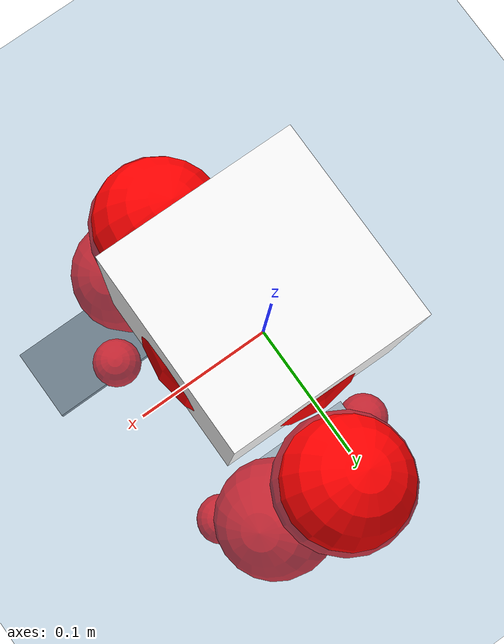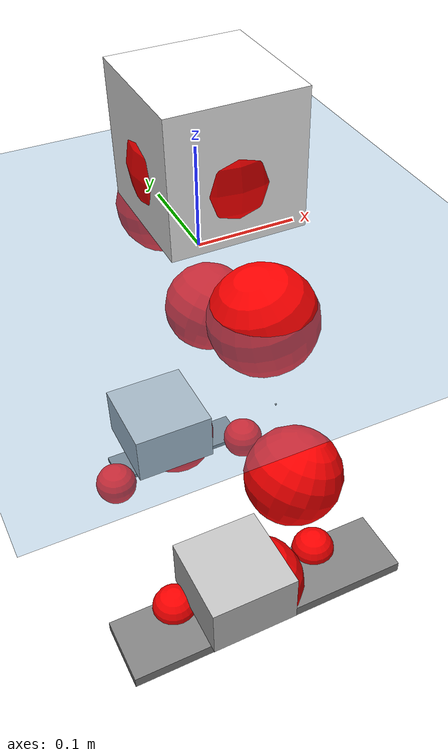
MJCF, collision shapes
<mujoco model="pi_12dof_release_v1">
  <compiler angle="radian" assetdir="assets" balanceinertia="true" inertiafromgeom="false"/>

  <option timestep="0.005" density="1.2" viscosity="2e-05"/>

  <size nkey="1"/>

  <visual>
    <quality shadowsize="8192"/>
    <map shadowclip="0.5"/>
  </visual>

  <default>
    <default class="/">
      <joint armature="0.01" damping="0.01" frictionloss="0.01"/>
      <geom contype="0" conaffinity="0" group="1" solref="-1000 -80"/>
      <site size="0.01 0.005 0.005" group="5"/>
      <general forcelimited="true" biastype="affine" gainprm="20" biasprm="0 -20 -0.5"/>
      <default class="foot">
        <geom size="0.0845 0.036 0.005" type="box" condim="6" group="4" priority="1" friction="0.9 0.2 0.2" solimp="0.015 1 0.005"/>
      </default>
      <default class="reward_collision_sphere">
        <geom group="5" rgba="1 0 0 1"/>
      </default>
    </default>
  </default>

  <asset>
    <texture type="skybox" colorspace="auto" name="//unnamed_texture_0" builtin="gradient" rgb1="0.95 0.95 0.95" rgb2="0.95 0.95 0.95" width="100" height="600"/>
    <texture type="2d" colorspace="auto" name="texplane" builtin="checker" rgb1="0.345 0.575 0.748" rgb2="0.345 0.575 0.748" markrgb="1 1 1" width="512" height="512"/>
    <material name="MatPlane" class="/" texture="texplane" texuniform="true" texrepeat="2 2" specular="0.9"/>
    <mesh name="baselink_1" class="/" file="baselink_1.STL"/>
    <mesh name="r_hip_pitch_link" class="/" file="r_hip_pitch_link.STL"/>
    <mesh name="r_hip_roll_link" class="/" file="r_hip_roll_link.STL"/>
    <mesh name="r_thigh_link" class="/" file="r_thigh_link.STL"/>
    <mesh name="r_calf_link" class="/" file="r_calf_link.STL"/>
    <mesh name="r_ankle_pitch_link" class="/" file="r_ankle_pitch_link.STL"/>
    <mesh name="r_ankle_roll_link" class="/" file="r_ankle_roll_link.STL"/>
    <mesh name="l_hip_pitch_link" class="/" file="l_hip_pitch_link.STL"/>
    <mesh name="l_hip_roll_link" class="/" file="l_hip_roll_link.STL"/>
    <mesh name="l_thigh_link" class="/" file="l_thigh_link.STL"/>
    <mesh name="l_calf_link" class="/" file="l_calf_link.STL"/>
    <mesh name="l_ankle_pitch_link" class="/" file="l_ankle_pitch_link.STL"/>
    <mesh name="l_ankle_roll_link" class="/" file="l_ankle_roll_link.STL"/>
  </asset>

  <worldbody>
    <geom name="floor" class="/" size="100 100 0.125" type="plane" group="0" material="MatPlane"/>
    <light name="toplight_shadow" class="/" pos="0 0 5" dir="0.0990148 0.0990148 -0.990148" type="directional" ambient="0.04 0.04 0.04" diffuse="0.55 0.55 0.55" specular="0.12 0.12 0.12"/>
    <light name="toplight_fill" class="/" pos="0 0 5" dir="0.0990148 0.0990148 -0.990148" type="directional" castshadow="false" ambient="0.04 0.04 0.04" diffuse="0.3 0.3 0.3" specular="0.08 0.08 0.08"/>
    <body name="trunk" pos="0.0103736 -0.00258757 0.00777722" quat="0.999989 -0.000648721 -0.00453814 -0.000920081">
      <inertial pos="0.0112 -0.00836487 0.0472681" quat="0.729403 -0.0218917 1.77396e-05 0.683733" mass="4.27248" diaginertia="0.0311766 0.0376186 0.0073315"/>
      <joint name="//unnamed_joint_0" type="free"/>
      <geom name="//unnamed_geom_1" class="/" type="mesh" density="0" rgba="1 1 1 1" mesh="baselink_1"/>
      <geom name="//unnamed_geom_2" class="/" size="0.0641442 0.0641442 0.0641442" pos="0 0 0.0947924" type="box" rgba="1 1 1 1"/>
      <geom name="//unnamed_geom_3" class="reward_collision_sphere" size="0.0705586" pos="0 0 0.0829434"/>
      <site name="imu" class="/" pos="-0.0419212 0.0781508 0.0294915" size="0.0128288"/>
      <camera name="track" class="/" pos="0 -2.66507 0" quat="0.707107 0.707107 0 0" mode="trackcom"/>
      <camera name="ego_camera" class="/" pos="0.0998409 0 0.213283" quat="-0.5 -0.5 0.5 0.5"/>
      <body name="r_hip_pitch_link" pos="-0.000140771 -0.0307925 -0.0332772" quat="0.992826 -0.00454231 -0.119445 0.00307786">
        <inertial pos="0.00913201 -0.0747788 0.00431092" quat="-0.00446085 0.669111 -0.0295028 0.742563" mass="0.641675" diaginertia="0.000378187 0.000344488 0.000144565"/>
        <joint name="r_hip_pitch_joint" class="/" pos="0 0 0" axis="0.0172689 -0.999523 0.0256232" stiffness="0.0662781" range="-1.73957 1.22702" armature="0.0181044" damping="0.00575985" frictionloss="0.00975466"/>
        <geom name="//unnamed_geom_4" class="/" type="mesh" density="0" rgba="0.75294 0.75294 0.75294 1" mesh="r_hip_pitch_link"/>
        <geom name="//unnamed_geom_5" class="/" size="0.000641442 0.000641442 0.000641442" type="box" rgba="0.75294 0.75294 0.75294 1"/>
        <body name="r_hip_roll_link" pos="0.00421368 -0.0719034 0.00402691" quat="1 -4.97091e-05 -0.000131109 -9.02305e-06">
          <inertial pos="-0.00149663 0.0139994 -0.0563869" quat="0.698069 -0.0626587 -0.0969856 0.706659" mass="0.843794" diaginertia="0.00132988 0.00127638 0.000284306"/>
          <joint name="r_hip_roll_joint" class="/" pos="0 0 0" axis="-0.998631 -0.0513825 -0.00983675" stiffness="0.0434023" range="-0.152554 0.227614" armature="0.00889542" damping="0.0370694" frictionloss="0.0163098"/>
          <geom name="//unnamed_geom_6" class="/" type="mesh" density="0" rgba="0.75294 0.75294 0.75294 1" mesh="r_hip_roll_link"/>
          <geom name="//unnamed_geom_7" class="/" size="0.000641442 0.000641442 0.000641442" type="box" rgba="0.75294 0.75294 0.75294 1"/>
          <geom name="//unnamed_geom_8" class="reward_collision_sphere" size="0.0513154"/>
          <body name="r_thigh_link" pos="-0.0161024 -0.014443 -0.0921045" quat="1 2.73827e-05 2.2923e-05 -0.000235124">
            <inertial pos="0.00502461 0.00994042 -0.0662658" quat="0.738188 0.674575 0.00157051 -0.00492329" mass="0.19779" diaginertia="0.000457234 0.000418062 0.000137271"/>
            <joint name="r_thigh_joint" class="/" pos="0 0 0" axis="-0.0280371 0.0381407 -0.998879" range="-0.39916 0.462412" armature="0.0105271" damping="0.0594333" frictionloss="0.0228992"/>
            <geom name="//unnamed_geom_9" class="/" type="mesh" density="0" rgba="0.75294 0.75294 0.75294 1" mesh="r_thigh_link"/>
            <geom name="//unnamed_geom_10" class="/" size="0.000641442 0.000641442 0.000641442" type="box" rgba="0.75294 0.75294 0.75294 1"/>
            <body name="r_calf_link" pos="-0.00745397 -0.0114726 -0.0972967" quat="0.947616 -0.000100698 0.319412 -5.17184e-05">
              <inertial pos="0.00420404 0.00838364 -0.0829113" quat="0.997242 -0.0376046 0.00396872 0.0638614" mass="1.39452" diaginertia="0.0133156 0.0110922 0.000321574"/>
              <joint name="r_calf_joint" class="/" pos="0 0 0" axis="0.000702166 -0.999836 0.0180771" stiffness="0.066252" range="-1.92049 0.634724" armature="0.0206379" damping="0" frictionloss="0.0128575"/>
              <geom name="//unnamed_geom_11" class="/" type="mesh" density="0" rgba="0.75294 0.75294 0.75294 1" mesh="r_calf_link"/>
              <geom name="//unnamed_geom_12" class="/" size="0.000641442 0.000641442 0.000641442" type="box" rgba="0.75294 0.75294 0.75294 1"/>
              <geom name="//unnamed_geom_13" class="reward_collision_sphere" size="0.0513154"/>
              <body name="r_ankle_pitch_link" pos="-0.00734794 0.0012061 -0.154388" quat="0.979766 0.000763544 -0.200135 0.00199781">
                <inertial pos="0.00479395 0.00426257 0.0143551" quat="0.00905058 0.690244 0.0741444 0.719711" mass="0.286277" diaginertia="0.00116638 0.000772835 0.000232155"/>
                <joint name="r_ankle_pitch_joint" class="/" pos="0 0 0" axis="0.0218689 -0.999541 0.0209885" range="-1.27834 0.199769" armature="0.0132426" damping="0.0142093" frictionloss="0.00470838"/>
                <geom name="//unnamed_geom_14" class="/" type="mesh" density="0" rgba="0.75294 0.75294 0.75294 1" mesh="r_ankle_pitch_link"/>
                <geom name="//unnamed_geom_15" class="/" size="0.0500325 0.0513154 0.0320721" type="box" rgba="0.75294 0.75294 0.75294 1"/>
                <body name="r_ankle_roll_link" pos="0.0981488 0.00223794 0.000657818" quat="1 9.18462e-05 0.000159451 -0.000184243">
                  <inertial pos="-0.0351233 0.000181181 -0.0331192" quat="0.553744 0.429882 0.468643 0.537535" mass="1.49799" diaginertia="0.00520881 0.00419569 0.000926263"/>
                  <joint name="r_ankle_roll_joint" class="/" pos="0 0 0" axis="-0.997759 -0.0367647 0.0559033" range="-0.345837 0.405358" armature="0.0224426" damping="0" frictionloss="0.0181855"/>
                  <geom name="//unnamed_geom_16" class="/" type="mesh" density="0" rgba="0.75294 0.75294 0.75294 1" mesh="r_ankle_roll_link"/>
                  <geom name="//unnamed_geom_17" class="/" type="mesh" rgba="0.75294 0.75294 0.75294 1" mesh="r_ankle_roll_link"/>
                  <geom name="right_foot" class="foot" size="0.166144 0.038855 0.00673518" pos="-0.0678918 0 -0.0521358"/>
                  <geom name="//unnamed_geom_19" class="reward_collision_sphere" size="0.0513154" pos="-0.0665606 0 -0.0236981"/>
                  <geom name="//unnamed_geom_20" class="reward_collision_sphere" size="0.0256577" pos="0.0199682 0.0266507 -0.0473962"/>
                  <geom name="//unnamed_geom_21" class="reward_collision_sphere" size="0.0256577" pos="-0.159745 0.0266507 -0.0473962"/>
                  <site name="right_foot" class="foot" pos="-0.0678918 0 -0.0521358" size="0.0128288"/>
                </body>
              </body>
            </body>
          </body>
        </body>
      </body>
      <body name="l_hip_pitch_link" pos="0.00315504 0.0385005 -0.0254596" quat="0.99226 0.000287209 -0.12418 -0.000184183">
        <inertial pos="0.00136926 0.0738573 0.0131096" quat="-0.0448684 0.698104 0.0289552 0.714003" mass="0.70313" diaginertia="0.000464481 0.000509346 0.00023744"/>
        <joint name="l_hip_pitch_joint" class="/" pos="0 0 0" axis="0.0418567 0.999123 0.000670601" range="-1.46349 1.72648" armature="0.00534213" damping="0.00587502" frictionloss="0.0145883"/>
        <geom name="//unnamed_geom_22" class="/" type="mesh" density="0" rgba="0.75294 0.75294 0.75294 1" mesh="l_hip_pitch_link"/>
        <geom name="//unnamed_geom_23" class="/" size="0.000641442 0.000641442 0.000641442" type="box" rgba="0.75294 0.75294 0.75294 1"/>
        <body name="l_hip_roll_link" pos="-0.0014105 0.0800116 -0.00244061" quat="1 -7.03415e-05 -0.000159559 -0.000646318">
          <inertial pos="0.0102082 -0.00259204 -0.056502" quat="0.707601 -0.136994 -0.0868416 0.687744" mass="0.782455" diaginertia="0.00150155 0.00106626 0.000321536"/>
          <joint name="l_hip_roll_joint" class="/" pos="0 0 0" axis="-0.999865 -0.0017737 -0.0163202" range="-0.21911 -0.109751" armature="0.0183476" damping="0.0857924" frictionloss="0.0125805"/>
          <geom name="//unnamed_geom_24" class="/" type="mesh" density="0" rgba="0.75294 0.75294 0.75294 1" mesh="l_hip_roll_link"/>
          <geom name="//unnamed_geom_25" class="/" size="0.000641442 0.000641442 0.000641442" type="box" rgba="0.75294 0.75294 0.75294 1"/>
          <geom name="//unnamed_geom_26" class="reward_collision_sphere" size="0.0513154"/>
          <body name="l_thigh_link" pos="0.00895986 -0.00680981 -0.0712034" quat="1 -0.000204308 0.000190755 0.000251412">
            <inertial pos="-0.00852649 0.00741345 -0.0660873" quat="0.641564 0.766155 -0.0340396 -0.015576" mass="0.273132" diaginertia="0.000521338 0.000369746 0.000146501"/>
            <joint name="l_thigh_joint" class="/" pos="0 0 0" axis="-0.000417103 0.00910223 -0.999958" stiffness="0.0749288" range="-0.59894 0.461484" armature="0.0140272" damping="0" frictionloss="0.0142861"/>
            <geom name="//unnamed_geom_27" class="/" type="mesh" density="0" rgba="0.75294 0.75294 0.75294 1" mesh="l_thigh_link"/>
            <geom name="//unnamed_geom_28" class="/" size="0.000641442 0.000641442 0.000641442" type="box" rgba="0.75294 0.75294 0.75294 1"/>
            <body name="l_calf_link" pos="-0.0036892 0.00505127 -0.0855947" quat="0.947655 -0.00291962 0.31928 0.000920096">
              <inertial pos="0.000205373 -0.0079336 -0.0722674" quat="0.99998 0.00376669 0.000329361 0.00503172" mass="1.86288" diaginertia="0.0181434 0.0182059 0.000489731"/>
              <joint name="l_calf_joint" class="/" pos="0 0 0" axis="1.37792e-05 0.999998 -0.00200588" range="-0.955052 1.38392" armature="0.0133848" damping="0.00116825" frictionloss="0.00925028"/>
              <geom name="//unnamed_geom_29" class="/" type="mesh" density="0" rgba="0.75294 0.75294 0.75294 1" mesh="l_calf_link"/>
              <geom name="//unnamed_geom_30" class="/" size="0.000641442 0.000641442 0.000641442" type="box" rgba="0.75294 0.75294 0.75294 1"/>
              <geom name="//unnamed_geom_31" class="reward_collision_sphere" size="0.0513154"/>
              <body name="l_ankle_pitch_link" pos="-0.00339598 0.00268575 -0.179925" quat="0.980066 0.000152148 -0.198671 -0.000203241">
                <inertial pos="0.0153972 -0.0114707 -0.00168973" quat="4.77228e-05 0.710356 0.00385747 0.703832" mass="0.489978" diaginertia="0.00134572 0.00109407 0.000274376"/>
                <joint name="l_ankle_pitch_joint" class="/" pos="0 0 0" axis="-0.000142597 1 0.00086118" stiffness="0.00339121" range="-0.235869 1.36918" armature="0.0196465" damping="0.0123993" frictionloss="0.010328"/>
                <geom name="//unnamed_geom_32" class="/" type="mesh" density="0" rgba="0.75294 0.75294 0.75294 1" mesh="l_ankle_pitch_link"/>
                <geom name="//unnamed_geom_33" class="/" size="0.0500325 0.0513154 0.0320721" type="box" rgba="0.75294 0.75294 0.75294 1"/>
                <body name="l_ankle_roll_link" pos="0.0858634 0.00213183 -0.0048449" quat="0.999999 0.000989724 -0.00108861 8.92688e-05">
                  <inertial pos="-0.0374816 -0.00132872 -0.0184826" quat="0.564876 0.437476 0.423457 0.556968" mass="1.39684" diaginertia="0.00555917 0.00495628 0.000732694"/>
                  <joint name="l_ankle_roll_joint" class="/" pos="0 0 0" axis="-0.999677 -0.00134704 -0.0253936" range="-0.26221 0.161053" armature="0.00602132" damping="0.00725164" frictionloss="0.0129011"/>
                  <geom name="//unnamed_geom_34" class="/" type="mesh" density="0" rgba="0.75294 0.75294 0.75294 1" mesh="l_ankle_roll_link"/>
                  <geom name="//unnamed_geom_35" class="/" type="mesh" rgba="0.75294 0.75294 0.75294 1" mesh="l_ankle_roll_link"/>
                  <geom name="left_foot" class="foot" size="0.0857676 0.0217262 0.0027217" pos="-0.0678918 0 -0.0521358"/>
                  <geom name="//unnamed_geom_37" class="reward_collision_sphere" size="0.0513154" pos="-0.0665606 0 -0.0236981"/>
                  <geom name="//unnamed_geom_38" class="reward_collision_sphere" size="0.0256577" pos="0.0199682 -0.0266507 -0.0473962"/>
                  <geom name="//unnamed_geom_39" class="reward_collision_sphere" size="0.0256577" pos="-0.159745 -0.0266507 -0.0473962"/>
                  <site name="left_foot" class="foot" pos="-0.0678918 0 -0.0521358" size="0.0128288"/>
                </body>
              </body>
            </body>
          </body>
        </body>
      </body>
    </body>
  </worldbody>

  <contact>
    <pair class="/" geom1="floor" geom2="right_foot" name="//unnamed_contact_1"/>
    <pair class="/" geom1="floor" geom2="left_foot" name="//unnamed_contact_0"/>
  </contact>

  <actuator>
    <general name="r_hip_pitch_joint" class="/" joint="r_hip_pitch_joint" forcerange="-26.2596 26.2596" gainprm="25.4274" biasprm="0 -25.4274 -0.690201"/>
    <general name="r_hip_roll_joint" class="/" joint="r_hip_roll_joint" forcerange="-39.9898 39.9898" gainprm="25.4274" biasprm="0 -25.4274 -0.690201"/>
    <general name="r_thigh_joint" class="/" joint="r_thigh_joint" forcerange="-18.8918 18.8918" gainprm="25.4274" biasprm="0 -25.4274 -0.690201"/>
    <general name="r_calf_joint" class="/" joint="r_calf_joint" forcerange="-32.3469 32.3469" gainprm="25.4274" biasprm="0 -25.4274 -0.690201"/>
    <general name="r_ankle_pitch_joint" class="/" joint="r_ankle_pitch_joint" forcerange="-20.8823 20.8823" gainprm="25.4274" biasprm="0 -25.4274 -0.690201"/>
    <general name="r_ankle_roll_joint" class="/" joint="r_ankle_roll_joint" forcerange="-18.561 18.561" gainprm="25.4274" biasprm="0 -25.4274 -0.690201"/>
    <general name="l_hip_pitch_joint" class="/" joint="l_hip_pitch_joint" forcerange="-23.805 23.805" gainprm="25.4274" biasprm="0 -25.4274 -0.690201"/>
    <general name="l_hip_roll_joint" class="/" joint="l_hip_roll_joint" forcerange="-14.5065 14.5065" gainprm="25.4274" biasprm="0 -25.4274 -0.690201"/>
    <general name="l_thigh_joint" class="/" joint="l_thigh_joint" forcerange="-40.511 40.511" gainprm="25.4274" biasprm="0 -25.4274 -0.690201"/>
    <general name="l_calf_joint" class="/" joint="l_calf_joint" forcerange="-25.4289 25.4289" gainprm="25.4274" biasprm="0 -25.4274 -0.690201"/>
    <general name="l_ankle_pitch_joint" class="/" joint="l_ankle_pitch_joint" forcerange="-17.8541 17.8541" gainprm="25.4274" biasprm="0 -25.4274 -0.690201"/>
    <general name="l_ankle_roll_joint" class="/" joint="l_ankle_roll_joint" forcerange="-10.7607 10.7607" gainprm="25.4274" biasprm="0 -25.4274 -0.690201"/>
  </actuator>

  <sensor>
    <gyro site="imu" name="imu_angular_velocity"/>
    <velocimeter site="imu" name="imu_linear_velocity"/>
    <framelinvel objtype="site" objname="left_foot" name="left_foot_global_linear_velocity"/>
    <framelinvel objtype="site" objname="right_foot" name="right_foot_global_linear_velocity"/>
  </sensor>

  <keyframe>
    <key name="home" qpos="0 0 0.291 1 0 0 0 0.4 0 0 -0.8 0.4 0 -0.4 0 0 0.8 -0.4 0"/>
  </keyframe>
</mujoco>
